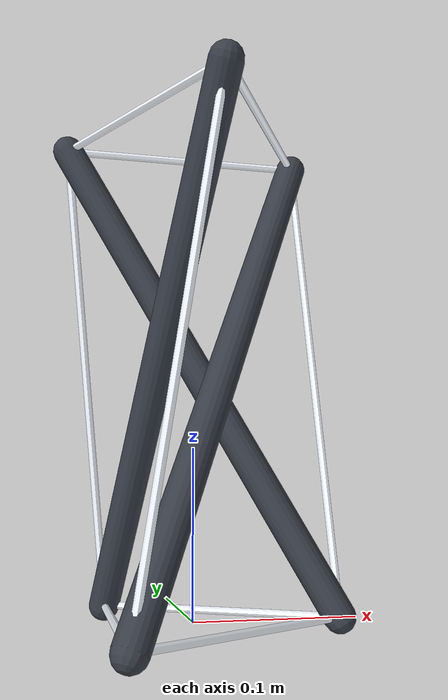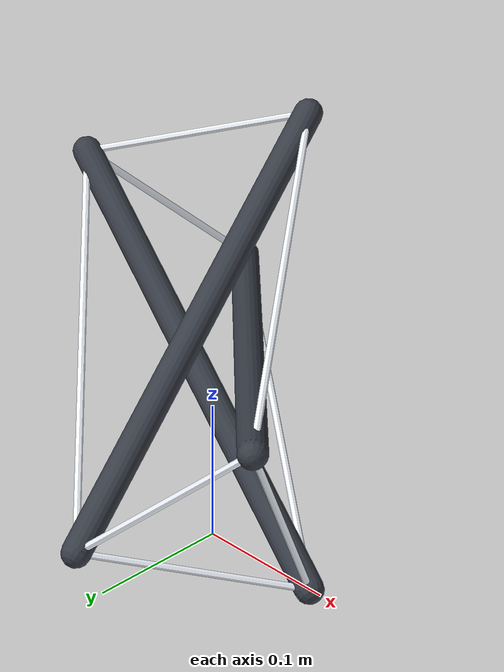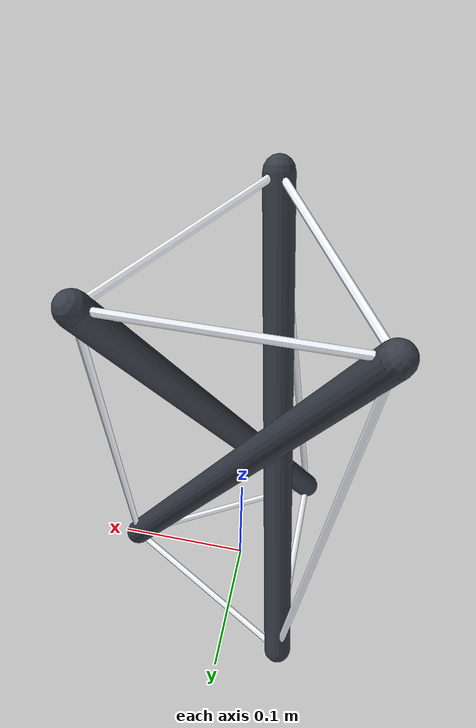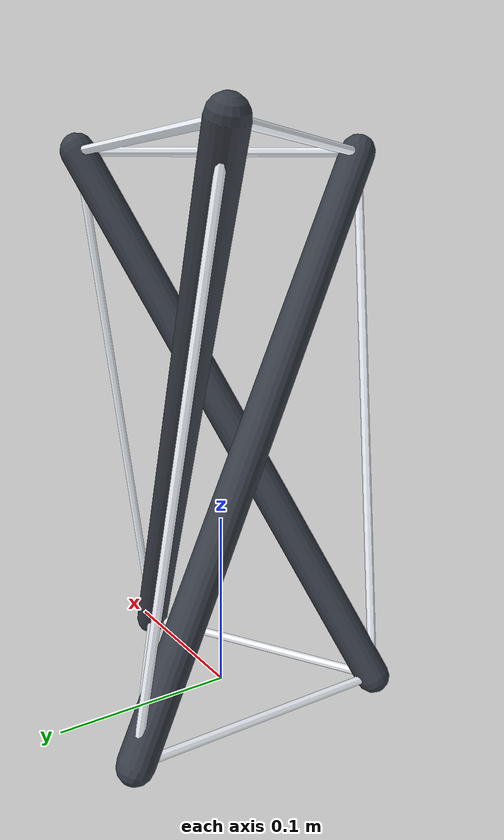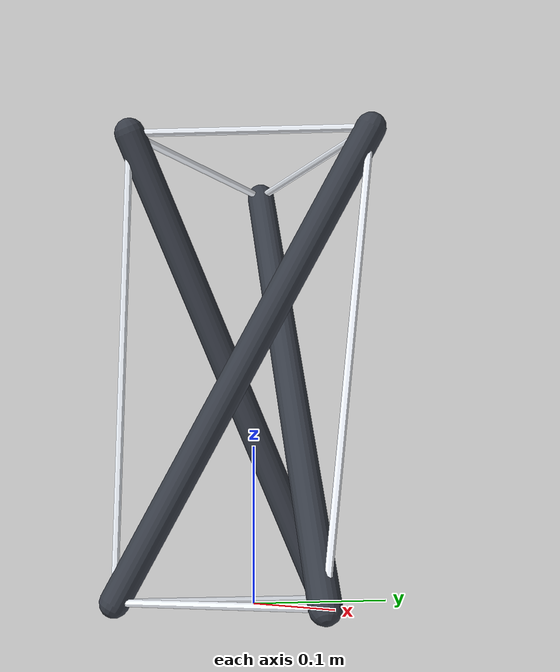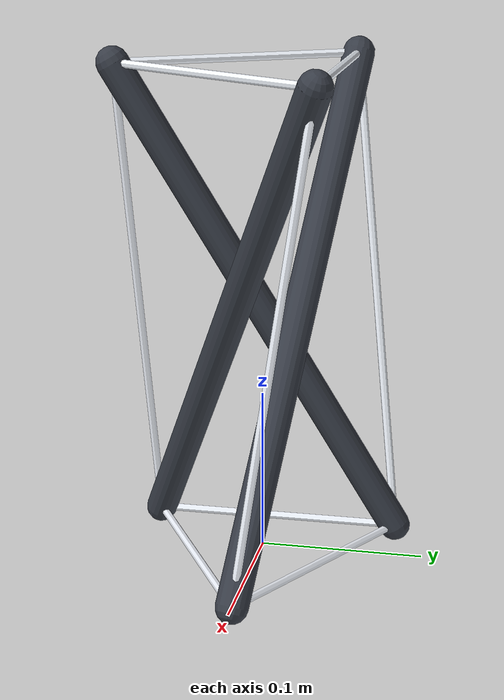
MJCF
<mujoco model="tensegrity_prism_formfind">
  <compiler angle="radian" autolimits="true"/>
  <option timestep="0.0005" integrator="implicitfast" gravity="0 0 -9.81"/>
  <default>
    <geom contype="0" conaffinity="0" rgba="0.22 0.24 0.28 1"/>
    <site size="0.006" rgba="0.9 0.6 0.2 1"/>
  </default>
  <worldbody>
    <light pos="0 0 2" dir="0 0 -1" directional="true"/>
    <body name="strut0" pos="0.00612 0.02265 0.15000">
      <freejoint/>
      <geom type="capsule" size="0.010" density="900"
            fromto="0.08388 -0.02265 -0.15000 -0.08388 0.02265 0.15000"/>
      <site name="b0" pos="0.08388 -0.02265 -0.15000"/>
      <site name="t1" pos="-0.08388 0.02265 0.15000"/>
    </body>
    <body name="strut1" pos="-0.02268 -0.00603 0.15000">
      <freejoint/>
      <geom type="capsule" size="0.010" density="900"
            fromto="-0.02232 0.08397 -0.15000 0.02232 -0.08397 0.15000"/>
      <site name="b1" pos="-0.02232 0.08397 -0.15000"/>
      <site name="t2" pos="0.02232 -0.08397 0.15000"/>
    </body>
    <body name="strut2" pos="0.01656 -0.01663 0.15000">
      <freejoint/>
      <geom type="capsule" size="0.010" density="900"
            fromto="-0.06156 -0.06132 -0.15000 0.06156 0.06132 0.15000"/>
      <site name="b2" pos="-0.06156 -0.06132 -0.15000"/>
      <site name="t0" pos="0.06156 0.06132 0.15000"/>
    </body>
  </worldbody>
  <tendon>
    <spatial name="c0" stiffness="2000.0" damping="6.0" springlength="0 0.13718"
             width="0.0025" rgba="0.95 0.97 1 1">
      <site site="b0"/>
      <site site="b1"/>
    </spatial>
    <spatial name="c1" stiffness="2000.0" damping="6.0" springlength="0 0.13718"
             width="0.0025" rgba="0.95 0.97 1 1">
      <site site="t0"/>
      <site site="t1"/>
    </spatial>
    <spatial name="c2" stiffness="2000.0" damping="6.0" springlength="0 0.26712"
             width="0.0025" rgba="0.95 0.97 1 1">
      <site site="b0"/>
      <site site="t0"/>
    </spatial>
    <spatial name="c3" stiffness="2000.0" damping="6.0" springlength="0 0.13718"
             width="0.0025" rgba="0.95 0.97 1 1">
      <site site="b1"/>
      <site site="b2"/>
    </spatial>
    <spatial name="c4" stiffness="2000.0" damping="6.0" springlength="0 0.13718"
             width="0.0025" rgba="0.95 0.97 1 1">
      <site site="t1"/>
      <site site="t2"/>
    </spatial>
    <spatial name="c5" stiffness="2000.0" damping="6.0" springlength="0 0.26712"
             width="0.0025" rgba="0.95 0.97 1 1">
      <site site="b1"/>
      <site site="t1"/>
    </spatial>
    <spatial name="c6" stiffness="2000.0" damping="6.0" springlength="0 0.13718"
             width="0.0025" rgba="0.95 0.97 1 1">
      <site site="b2"/>
      <site site="b0"/>
    </spatial>
    <spatial name="c7" stiffness="2000.0" damping="6.0" springlength="0 0.13718"
             width="0.0025" rgba="0.95 0.97 1 1">
      <site site="t2"/>
      <site site="t0"/>
    </spatial>
    <spatial name="c8" stiffness="2000.0" damping="6.0" springlength="0 0.26712"
             width="0.0025" rgba="0.95 0.97 1 1">
      <site site="b2"/>
      <site site="t2"/>
    </spatial></tendon>
</mujoco>
